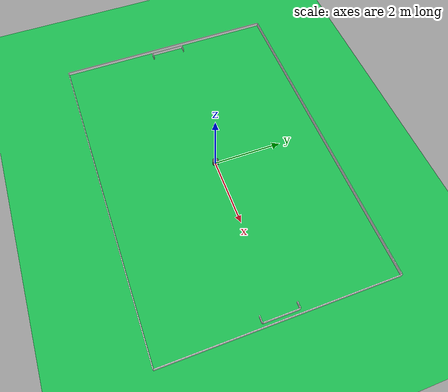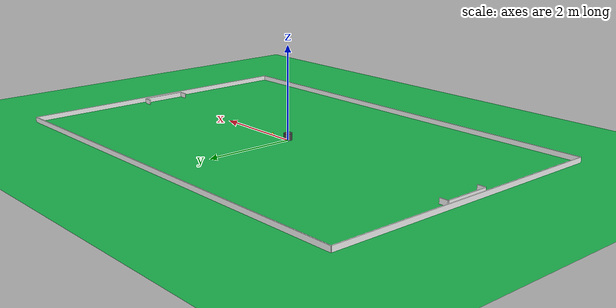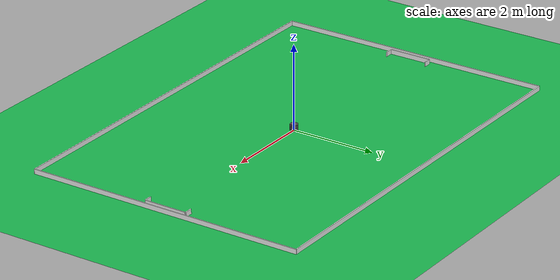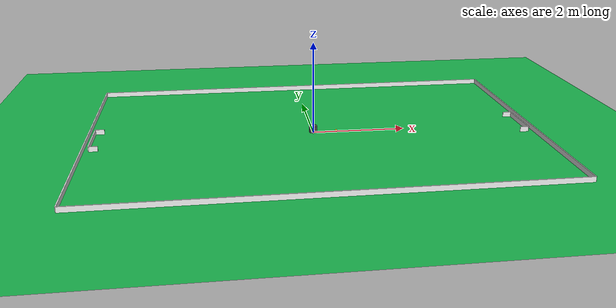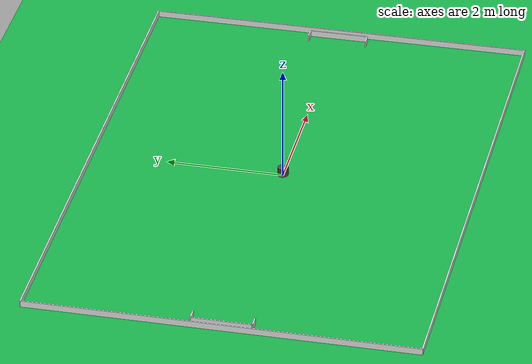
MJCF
<mujoco model="robot scene">
  <include file="robot.xml"/>

  <statistic center="0 0 0.8" extent="2"/>

  <option noslip_iterations="1"></option>

  <visual>
    <headlight diffuse="0.6 0.6 0.6" ambient="0.3 0.3 0.3" specular="0 0 0"/>
    <rgba haze="0.15 0.25 0.35 1"/>
    <global azimuth="120" elevation="-20" offwidth="1920" offheight="1080"/>
  </visual>

  <asset>
    <texture type="skybox" builtin="gradient" rgb1="0.3 0.5 0.7" rgb2="0 0 0" width="512" height="3072"/>
    <texture type="2d" name="groundplane" builtin="checker" mark="edge" rgb1="0.1 0.6 0.3" rgb2="0.1 0.8 0.3" markrgb="0.8 0.8 0.8" width="300" height="300"/>
    <material name="groundplane" texture="groundplane" texuniform="true" texrepeat="5 5" reflectance="0.2"/>
  </asset>

  <worldbody>
    <light pos="1 -1 1.5" dir="-1 1 -1" diffuse="0.5 0.5 0.5" directional="true"/>
    <geom name="floor" size="0 0 0.05" pos="0 0 0" type="plane" material="groundplane"/>
    <body name="ball" pos="0.5 0 0.025">
        <freejoint name="free_ball" />
        <geom name="ball_geom" size="0.025" pos="0 0 0" type="sphere" rgba="1 0.647 0 1" mass="0.02" />
    </body>

    <body name="field_walls" pos="0 0 0">
        <geom name="field_blue_wall" size="0.01 3.3 0.1" pos="-4.8 0 0" type="box" rgba="1 1 1 1" />
        <geom name="field_yellow_wall" size="0.01 3.3 0.1" pos="4.8 0 0" type="box" rgba="1 1 1 1" />

        <geom name="field_left_wall" size="4.8 0.01 0.1" pos="0 3.3 0" type="box" rgba="1 1 1 1" />
        <geom name="field_right_wall" size="4.8 0.01 0.1" pos="0 -3.3 0" type="box" rgba="1 1 1 1" />
    </body>

    <body name="field_blue_goal" pos="0 0 0">
        <geom name="field_blue_goal_back_wall" size="0.01 0.5 0.1" pos="-4.69 0 0" type="box" rgba="1 1 1 1" />
        <geom name="field_blue_goal_left_wall" size="0.09 0.01 0.1" pos="-4.59 0.51 0" type="box" rgba="1 1 1 1" />
        <geom name="field_blue_goal_right_wall" size="0.09 0.01 0.1" pos="-4.59 -0.51 0" type="box" rgba="1 1 1 1" />
    </body>

    <body name="field_yellow_goal" pos="0 0 0">
        <geom name="field_yellow_goal_back_wall" size="0.01 0.5 0.1" pos="4.69 0 0" type="box" rgba="1 1 1 1" />
        <geom name="field_yellow_goal_left_wall" size="0.09 0.01 0.1" pos="4.59 0.51 0" type="box" rgba="1 1 1 1" />
        <geom name="field_yellow_goal_right_wall" size="0.09 0.01 0.1" pos="4.59 -0.51 0" type="box" rgba="1 1 1 1" />
    </body>
  </worldbody>
</mujoco>

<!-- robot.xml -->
<mujoco model="robot">
    <compiler angle="degree" coordinate="local" autolimits="true"/>
    <option timestep="0.004" integrator="implicitfast"/>
    <option gravity="0 0 -9.81"/>

    <asset>
        <mesh file="robot_body.stl"/>
    </asset>

    <worldbody>
        <!-- Robot Base -->
        <body name="robot_base" pos="0 0 0.01">

            <joint name="x_pos" type="slide" axis="1 0 0"/>
            <joint name="y_pos" type="slide" axis="0 1 0"/>
            <joint name="orientation" type="hinge" axis="0 0 1"/>
            <camera name="side" pos="0 -3 1" xyaxes="1 0 0 0 1 2" mode="trackcom"/>
            <geom name="chassis" type="mesh" mesh="robot_body" rgba="0.3 0.3 0.3 1" mass="2" euler="0 0 90"/>
            <geom name="kicker" type="box" size="0.01 0.045 0.05" pos="0.065 0 0.05" rgba="0.3 0.3 0.3 1" mass="0.2"/>
        </body>
    </worldbody>

    <actuator>
        <motor name="orientation_motor" joint="orientation"/>
        <motor name="forward_motor" joint="x_pos"/>
        <motor name="left_motor" joint="y_pos"/>
    </actuator>
</mujoco>
